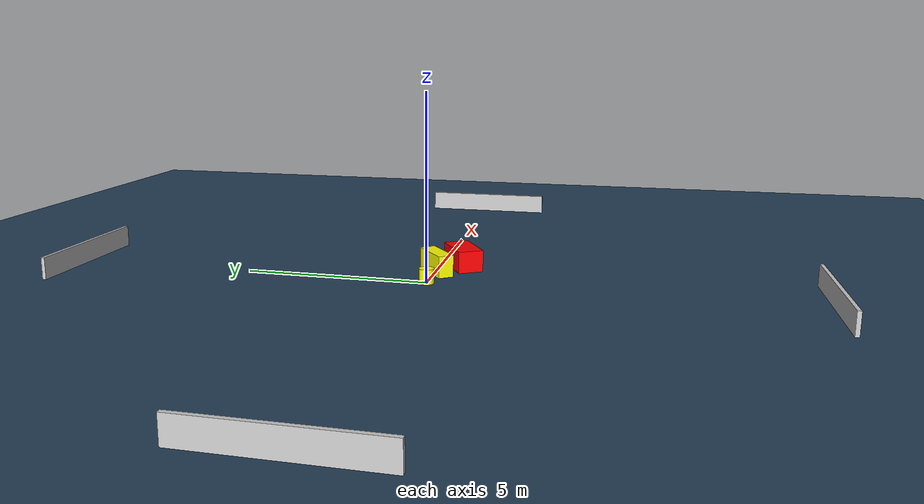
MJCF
<?xml version="1.0" ?>
<mujoco model="generated_environment">
  <option timestep="0.01" integrator="RK4" cone="elliptic"/>
  <default>
    <geom density="1"/>
  </default>
  <asset>
    <texture builtin="gradient" height="3072" name="skybox" rgb1="0.3 0.5 0.7" rgb2="0 0 0" type="skybox" width="512"/>
    <texture builtin="checker" height="300" name="groundplane" rgb1="0.2 0.3 0.4" rgb2="0.1 0.2 0.3" type="2d" width="300"/>
    <material name="groundplane" reflectance="0.2" texrepeat="5 5" texture="groundplane"/>
  </asset>
  <worldbody>
    <light dir="0 0 -1" directional="true" pos="0 0 1.5"/>
    <geom condim="3" friction="0.5 0.005 0.001" material="groundplane" name="floor" pos="0 0 0" size="0 0 0.05" type="plane"/>
    <body name="walls">
      <geom name="wall_1" condim="4" pos="-10.0 0.0 0.3" rgba="0.800000011920929 0.800000011920929 0.800000011920929 1.0" size="0.05 2.0 0.3" type="box"/>
      <geom name="wall_2" condim="4" pos="10.0 0.0 0.3" rgba="0.800000011920929 0.800000011920929 0.800000011920929 1.0" size="0.05 2.0 0.3" type="box"/>
      <geom name="wall_3" condim="4" pos="0.0 -10.0 0.3" rgba="0.800000011920929 0.800000011920929 0.800000011920929 1.0" size="2.0 0.05 0.3" type="box"/>
      <geom name="wall_4" condim="4" pos="0.0 10.0 0.3" rgba="0.800000011920929 0.800000011920929 0.800000011920929 1.0" size="2.0 0.05 0.3" type="box"/>
    </body>
    <body name="robot">
      <joint name="joint_x" type="slide" pos="0 0 0" axis="1 0 0"/>
      <joint name="joint_y" type="slide" pos="0 0 0" axis="0 1 0"/>
      <geom name="robot" type="cylinder" pos="0.0 0.0 0.2" size="0.2 0.2 0.0" mass="5.0" friction="1.0 0.005 0.0001" condim="4" rgba="1.0 1.0 0.0 1.0"/>
    </body>
    <body name="obstacle_1_movable">
      <geom name="obstacle_1_movable" condim="4" pos="1.0690130905872621 -0.031879334895153086 0.3" euler="0 0 218.10743319708158" friction="0.0 0.005 0.001" rgba="1.0 1.0 0.0 1.0" size="0.5870321260637337 0.2161657144555542 0.3" type="box" mass="0.1"/>
      <joint type="free"/>
    </body>
    <body name="obstacle_2_static">
      <geom name="obstacle_2_static" condim="4" pos="1.798218427977567 -0.636339650319472 0.3" euler="0 0 210.24036129156138" friction="0.0 0.005 0.001" rgba="1.0 0.0 0.0 1.0" size="0.6252761412163403 0.35001794818608944 0.3" type="box"/>
    </body>
  </worldbody>
  <actuator>
    <motor name="actuator_x" joint="joint_x" gear="1" ctrlrange="-1 1"/>
    <motor name="actuator_y" joint="joint_y" gear="1" ctrlrange="-1 1"/>
  </actuator>
</mujoco>
